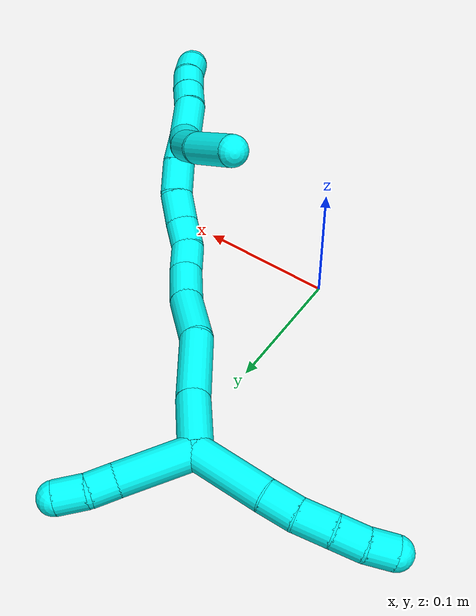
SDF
<sdf version="1.7">
 <world name="default">
  <model name="3">
   <static>0</static>
   <link name="3">
    <collision name="collision-cylinder-e_1_2_8">
     <pose>-0.020653 -0.009115 0.017016 0.491757 -0.819167 -0.217042</pose>
     <geometry><cylinder><radius>0.0125</radius><length>0.056539</length></cylinder></geometry>
     <surface>
      <friction><ode><mu>1.16</mu><mu2>1.16</mu2><slip1>0</slip1><slip2>0</slip2></ode></friction>
      <contact><ode><kp>1e+06</kp><kd>1</kd><max_vel>0</max_vel><min_depth>0.001</min_depth></ode></contact>
     </surface>
    </collision>
    <visual name="visual-cylinder-e_1_2_8">
     <pose>-0.020653 -0.009115 0.017016 0.491757 -0.819167 -0.217042</pose>
     <geometry><cylinder><radius>0.0125</radius><length>0.056539</length></cylinder></geometry>
     <material><ambient>0.003922 1 0.996078 1</ambient></material>
    </visual>
    <collision name="collision-cylinder-e_2_8_9">
     <pose>-0.050983 -0.022353 0.040099 0.597045 -0.922114 -0.303379</pose>
     <geometry><cylinder><radius>0.0125</radius><length>0.024286</length></cylinder></geometry>
     <surface>
      <friction><ode><mu>1.16</mu><mu2>1.16</mu2><slip1>0</slip1><slip2>0</slip2></ode></friction>
      <contact><ode><kp>1e+06</kp><kd>1</kd><max_vel>0</max_vel><min_depth>0.001</min_depth></ode></contact>
     </surface>
    </collision>
    <visual name="visual-cylinder-e_2_8_9">
     <pose>-0.050983 -0.022353 0.040099 0.597045 -0.922114 -0.303379</pose>
     <geometry><cylinder><radius>0.0125</radius><length>0.024286</length></cylinder></geometry>
     <material><ambient>0.003922 1 0.996078 1</ambient></material>
    </visual>
    <collision name="collision-cylinder-e_3_9_10">
     <pose>-0.070991 -0.032193 0.051406 0.828712 -0.92695 -0.432748</pose>
     <geometry><cylinder><radius>0.0125</radius><length>0.025835</length></cylinder></geometry>
     <surface>
      <friction><ode><mu>1.16</mu><mu2>1.16</mu2><slip1>0</slip1><slip2>0</slip2></ode></friction>
      <contact><ode><kp>1e+06</kp><kd>1</kd><max_vel>0</max_vel><min_depth>0.001</min_depth></ode></contact>
     </surface>
    </collision>
    <visual name="visual-cylinder-e_3_9_10">
     <pose>-0.070991 -0.032193 0.051406 0.828712 -0.92695 -0.432748</pose>
     <geometry><cylinder><radius>0.0125</radius><length>0.025835</length></cylinder></geometry>
     <material><ambient>0.003922 1 0.996078 1</ambient></material>
    </visual>
    <collision name="collision-cylinder-e_4_10_11">
     <pose>-0.090954 -0.042631 0.05992 0.96467 -1.03286 -0.577969</pose>
     <geometry><cylinder><radius>0.0125</radius><length>0.022433</length></cylinder></geometry>
     <surface>
      <friction><ode><mu>1.16</mu><mu2>1.16</mu2><slip1>0</slip1><slip2>0</slip2></ode></friction>
      <contact><ode><kp>1e+06</kp><kd>1</kd><max_vel>0</max_vel><min_depth>0.001</min_depth></ode></contact>
     </surface>
    </collision>
    <visual name="visual-cylinder-e_4_10_11">
     <pose>-0.090954 -0.042631 0.05992 0.96467 -1.03286 -0.577969</pose>
     <geometry><cylinder><radius>0.0125</radius><length>0.022433</length></cylinder></geometry>
     <material><ambient>0.003922 1 0.996078 1</ambient></material>
    </visual>
    <collision name="collision-cylinder-e_5_11_6">
     <pose>-0.109295 -0.052905 0.064815 1.28672 -0.984638 -0.76473</pose>
     <geometry><cylinder><radius>0.0125</radius><length>0.020907</length></cylinder></geometry>
     <surface>
      <friction><ode><mu>1.16</mu><mu2>1.16</mu2><slip1>0</slip1><slip2>0</slip2></ode></friction>
      <contact><ode><kp>1e+06</kp><kd>1</kd><max_vel>0</max_vel><min_depth>0.001</min_depth></ode></contact>
     </surface>
    </collision>
    <visual name="visual-cylinder-e_5_11_6">
     <pose>-0.109295 -0.052905 0.064815 1.28672 -0.984638 -0.76473</pose>
     <geometry><cylinder><radius>0.0125</radius><length>0.020907</length></cylinder></geometry>
     <material><ambient>0.003922 1 0.996078 1</ambient></material>
    </visual>
    <collision name="collision-cylinder-e_1_2_12">
     <pose>0.009941 0.026236 -0.002429 -1.66312 0.360783 -0.394868</pose>
     <geometry><cylinder><radius>0.0125</radius><length>0.056323</length></cylinder></geometry>
     <surface>
      <friction><ode><mu>1.16</mu><mu2>1.16</mu2><slip1>0</slip1><slip2>0</slip2></ode></friction>
      <contact><ode><kp>1e+06</kp><kd>1</kd><max_vel>0</max_vel><min_depth>0.001</min_depth></ode></contact>
     </surface>
    </collision>
    <visual name="visual-cylinder-e_1_2_12">
     <pose>0.009941 0.026236 -0.002429 -1.66312 0.360783 -0.394868</pose>
     <geometry><cylinder><radius>0.0125</radius><length>0.056323</length></cylinder></geometry>
     <material><ambient>0.003922 1 0.996078 1</ambient></material>
    </visual>
    <collision name="collision-cylinder-e_2_12_13">
     <pose>0.02425 0.061718 -0.003754 -1.45188 0.438583 -0.390618</pose>
     <geometry><cylinder><radius>0.0125</radius><length>0.02057</length></cylinder></geometry>
     <surface>
      <friction><ode><mu>1.16</mu><mu2>1.16</mu2><slip1>0</slip1><slip2>0</slip2></ode></friction>
      <contact><ode><kp>1e+06</kp><kd>1</kd><max_vel>0</max_vel><min_depth>0.001</min_depth></ode></contact>
     </surface>
    </collision>
    <visual name="visual-cylinder-e_2_12_13">
     <pose>0.02425 0.061718 -0.003754 -1.45188 0.438583 -0.390618</pose>
     <geometry><cylinder><radius>0.0125</radius><length>0.02057</length></cylinder></geometry>
     <material><ambient>0.003922 1 0.996078 1</ambient></material>
    </visual>
    <collision name="collision-cylinder-e_3_13_5">
     <pose>0.033918 0.081053 -0.004547 -1.7568 0.476629 -0.56988</pose>
     <geometry><cylinder><radius>0.0125</radius><length>0.023107</length></cylinder></geometry>
     <surface>
      <friction><ode><mu>1.16</mu><mu2>1.16</mu2><slip1>0</slip1><slip2>0</slip2></ode></friction>
      <contact><ode><kp>1e+06</kp><kd>1</kd><max_vel>0</max_vel><min_depth>0.001</min_depth></ode></contact>
     </surface>
    </collision>
    <visual name="visual-cylinder-e_3_13_5">
     <pose>0.033918 0.081053 -0.004547 -1.7568 0.476629 -0.56988</pose>
     <geometry><cylinder><radius>0.0125</radius><length>0.023107</length></cylinder></geometry>
     <material><ambient>0.003922 1 0.996078 1</ambient></material>
    </visual>
    <collision name="collision-cylinder-e_1_2_14">
     <pose>0.006017 -0.00842 -0.021072 2.76144 0.259189 1.19074</pose>
     <geometry><cylinder><radius>0.0125</radius><length>0.046953</length></cylinder></geometry>
     <surface>
      <friction><ode><mu>1.16</mu><mu2>1.16</mu2><slip1>0</slip1><slip2>0</slip2></ode></friction>
      <contact><ode><kp>1e+06</kp><kd>1</kd><max_vel>0</max_vel><min_depth>0.001</min_depth></ode></contact>
     </surface>
    </collision>
    <visual name="visual-cylinder-e_1_2_14">
     <pose>0.006017 -0.00842 -0.021072 2.76144 0.259189 1.19074</pose>
     <geometry><cylinder><radius>0.0125</radius><length>0.046953</length></cylinder></geometry>
     <material><ambient>0.003922 1 0.996078 1</ambient></material>
    </visual>
    <collision name="collision-cylinder-e_2_14_15">
     <pose>0.018707 -0.029377 -0.067361 2.68022 0.232672 0.923404</pose>
     <geometry><cylinder><radius>0.0125</radius><length>0.057881</length></cylinder></geometry>
     <surface>
      <friction><ode><mu>1.16</mu><mu2>1.16</mu2><slip1>0</slip1><slip2>0</slip2></ode></friction>
      <contact><ode><kp>1e+06</kp><kd>1</kd><max_vel>0</max_vel><min_depth>0.001</min_depth></ode></contact>
     </surface>
    </collision>
    <visual name="visual-cylinder-e_2_14_15">
     <pose>0.018707 -0.029377 -0.067361 2.68022 0.232672 0.923404</pose>
     <geometry><cylinder><radius>0.0125</radius><length>0.057881</length></cylinder></geometry>
     <material><ambient>0.003922 1 0.996078 1</ambient></material>
    </visual>
    <collision name="collision-cylinder-e_3_15_16">
     <pose>0.031386 -0.046415 -0.113871 2.9333 0.269253 1.82712</pose>
     <geometry><cylinder><radius>0.0125</radius><length>0.045156</length></cylinder></geometry>
     <surface>
      <friction><ode><mu>1.16</mu><mu2>1.16</mu2><slip1>0</slip1><slip2>0</slip2></ode></friction>
      <contact><ode><kp>1e+06</kp><kd>1</kd><max_vel>0</max_vel><min_depth>0.001</min_depth></ode></contact>
     </surface>
    </collision>
    <visual name="visual-cylinder-e_3_15_16">
     <pose>0.031386 -0.046415 -0.113871 2.9333 0.269253 1.82712</pose>
     <geometry><cylinder><radius>0.0125</radius><length>0.045156</length></cylinder></geometry>
     <material><ambient>0.003922 1 0.996078 1</ambient></material>
    </visual>
    <collision name="collision-cylinder-e_4_16_17">
     <pose>0.041685 -0.0571 -0.149236 2.72745 0.272369 1.15596</pose>
     <geometry><cylinder><radius>0.0125</radius><length>0.031917</length></cylinder></geometry>
     <surface>
      <friction><ode><mu>1.16</mu><mu2>1.16</mu2><slip1>0</slip1><slip2>0</slip2></ode></friction>
      <contact><ode><kp>1e+06</kp><kd>1</kd><max_vel>0</max_vel><min_depth>0.001</min_depth></ode></contact>
     </surface>
    </collision>
    <visual name="visual-cylinder-e_4_16_17">
     <pose>0.041685 -0.0571 -0.149236 2.72745 0.272369 1.15596</pose>
     <geometry><cylinder><radius>0.0125</radius><length>0.031917</length></cylinder></geometry>
     <material><ambient>0.003922 1 0.996078 1</ambient></material>
    </visual>
    <collision name="collision-cylinder-e_5_17_18">
     <pose>0.050231 -0.06967 -0.171909 2.50304 0.377869 1.04879</pose>
     <geometry><cylinder><radius>0.0125</radius><length>0.023053</length></cylinder></geometry>
     <surface>
      <friction><ode><mu>1.16</mu><mu2>1.16</mu2><slip1>0</slip1><slip2>0</slip2></ode></friction>
      <contact><ode><kp>1e+06</kp><kd>1</kd><max_vel>0</max_vel><min_depth>0.001</min_depth></ode></contact>
     </surface>
    </collision>
    <visual name="visual-cylinder-e_5_17_18">
     <pose>0.050231 -0.06967 -0.171909 2.50304 0.377869 1.04879</pose>
     <geometry><cylinder><radius>0.0125</radius><length>0.023053</length></cylinder></geometry>
     <material><ambient>0.003922 1 0.996078 1</ambient></material>
    </visual>
    <collision name="collision-cylinder-e_6_18_19">
     <pose>0.060927 -0.080162 -0.188423 2.66289 0.625934 1.84934</pose>
     <geometry><cylinder><radius>0.0125</radius><length>0.021996</length></cylinder></geometry>
     <surface>
      <friction><ode><mu>1.16</mu><mu2>1.16</mu2><slip1>0</slip1><slip2>0</slip2></ode></friction>
      <contact><ode><kp>1e+06</kp><kd>1</kd><max_vel>0</max_vel><min_depth>0.001</min_depth></ode></contact>
     </surface>
    </collision>
    <visual name="visual-cylinder-e_6_18_19">
     <pose>0.060927 -0.080162 -0.188423 2.66289 0.625934 1.84934</pose>
     <geometry><cylinder><radius>0.0125</radius><length>0.021996</length></cylinder></geometry>
     <material><ambient>0.003922 1 0.996078 1</ambient></material>
    </visual>
    <collision name="collision-cylinder-e_7_19_20">
     <pose>0.075689 -0.089999 -0.203471 2.46494 0.737702 1.66468</pose>
     <geometry><cylinder><radius>0.0125</radius><length>0.024738</length></cylinder></geometry>
     <surface>
      <friction><ode><mu>1.16</mu><mu2>1.16</mu2><slip1>0</slip1><slip2>0</slip2></ode></friction>
      <contact><ode><kp>1e+06</kp><kd>1</kd><max_vel>0</max_vel><min_depth>0.001</min_depth></ode></contact>
     </surface>
    </collision>
    <visual name="visual-cylinder-e_7_19_20">
     <pose>0.075689 -0.089999 -0.203471 2.46494 0.737702 1.66468</pose>
     <geometry><cylinder><radius>0.0125</radius><length>0.024738</length></cylinder></geometry>
     <material><ambient>0.003922 1 0.996078 1</ambient></material>
    </visual>
    <collision name="collision-cylinder-e_8_20_21">
     <pose>0.090958 -0.104443 -0.217971 2.27247 0.547152 1.08754</pose>
     <geometry><cylinder><radius>0.0125</radius><length>0.026715</length></cylinder></geometry>
     <surface>
      <friction><ode><mu>1.16</mu><mu2>1.16</mu2><slip1>0</slip1><slip2>0</slip2></ode></friction>
      <contact><ode><kp>1e+06</kp><kd>1</kd><max_vel>0</max_vel><min_depth>0.001</min_depth></ode></contact>
     </surface>
    </collision>
    <visual name="visual-cylinder-e_8_20_21">
     <pose>0.090958 -0.104443 -0.217971 2.27247 0.547152 1.08754</pose>
     <geometry><cylinder><radius>0.0125</radius><length>0.026715</length></cylinder></geometry>
     <material><ambient>0.003922 1 0.996078 1</ambient></material>
    </visual>
    <collision name="collision-cylinder-e_9_21_1">
     <pose>0.102641 -0.121491 -0.2303 2.10806 0.453929 0.772013</pose>
     <geometry><cylinder><radius>0.0125</radius><length>0.02159</length></cylinder></geometry>
     <surface>
      <friction><ode><mu>1.16</mu><mu2>1.16</mu2><slip1>0</slip1><slip2>0</slip2></ode></friction>
      <contact><ode><kp>1e+06</kp><kd>1</kd><max_vel>0</max_vel><min_depth>0.001</min_depth></ode></contact>
     </surface>
    </collision>
    <visual name="visual-cylinder-e_9_21_1">
     <pose>0.102641 -0.121491 -0.2303 2.10806 0.453929 0.772013</pose>
     <geometry><cylinder><radius>0.0125</radius><length>0.02159</length></cylinder></geometry>
     <material><ambient>0.003922 1 0.996078 1</ambient></material>
    </visual>
    <collision name="collision-cylinder-e_1_1_22">
     <pose>0.111873 -0.139292 -0.250537 2.58673 0.245341 0.817152</pose>
     <geometry><cylinder><radius>0.0125</radius><length>0.037044</length></cylinder></geometry>
     <surface>
      <friction><ode><mu>1.16</mu><mu2>1.16</mu2><slip1>0</slip1><slip2>0</slip2></ode></friction>
      <contact><ode><kp>1e+06</kp><kd>1</kd><max_vel>0</max_vel><min_depth>0.001</min_depth></ode></contact>
     </surface>
    </collision>
    <visual name="visual-cylinder-e_1_1_22">
     <pose>0.111873 -0.139292 -0.250537 2.58673 0.245341 0.817152</pose>
     <geometry><cylinder><radius>0.0125</radius><length>0.037044</length></cylinder></geometry>
     <material><ambient>0.003922 1 0.996078 1</ambient></material>
    </visual>
    <collision name="collision-cylinder-e_2_22_23">
     <pose>0.119531 -0.152672 -0.275279 2.74959 0.298998 1.29798</pose>
     <geometry><cylinder><radius>0.0125</radius><length>0.021447</length></cylinder></geometry>
     <surface>
      <friction><ode><mu>1.16</mu><mu2>1.16</mu2><slip1>0</slip1><slip2>0</slip2></ode></friction>
      <contact><ode><kp>1e+06</kp><kd>1</kd><max_vel>0</max_vel><min_depth>0.001</min_depth></ode></contact>
     </surface>
    </collision>
    <visual name="visual-cylinder-e_2_22_23">
     <pose>0.119531 -0.152672 -0.275279 2.74959 0.298998 1.29798</pose>
     <geometry><cylinder><radius>0.0125</radius><length>0.021447</length></cylinder></geometry>
     <material><ambient>0.003922 1 0.996078 1</ambient></material>
    </visual>
    <collision name="collision-cylinder-e_3_23_24">
     <pose>0.12536 -0.160722 -0.293817 2.71381 0.2618 1.08977</pose>
     <geometry><cylinder><radius>0.0125</radius><length>0.020634</length></cylinder></geometry>
     <surface>
      <friction><ode><mu>1.16</mu><mu2>1.16</mu2><slip1>0</slip1><slip2>0</slip2></ode></friction>
      <contact><ode><kp>1e+06</kp><kd>1</kd><max_vel>0</max_vel><min_depth>0.001</min_depth></ode></contact>
     </surface>
    </collision>
    <visual name="visual-cylinder-e_3_23_24">
     <pose>0.12536 -0.160722 -0.293817 2.71381 0.2618 1.08977</pose>
     <geometry><cylinder><radius>0.0125</radius><length>0.020634</length></cylinder></geometry>
     <material><ambient>0.003922 1 0.996078 1</ambient></material>
    </visual>
    <collision name="collision-cylinder-e_4_24_4">
     <pose>0.128758 -0.169437 -0.312235 2.686 0.069785 0.298912</pose>
     <geometry><cylinder><radius>0.0125</radius><length>0.020874</length></cylinder></geometry>
     <surface>
      <friction><ode><mu>1.16</mu><mu2>1.16</mu2><slip1>0</slip1><slip2>0</slip2></ode></friction>
      <contact><ode><kp>1e+06</kp><kd>1</kd><max_vel>0</max_vel><min_depth>0.001</min_depth></ode></contact>
     </surface>
    </collision>
    <visual name="visual-cylinder-e_4_24_4">
     <pose>0.128758 -0.169437 -0.312235 2.686 0.069785 0.298912</pose>
     <geometry><cylinder><radius>0.0125</radius><length>0.020874</length></cylinder></geometry>
     <material><ambient>0.003922 1 0.996078 1</ambient></material>
    </visual>
    <collision name="collision-cylinder-e_1_1_25">
     <pose>0.107509 -0.128393 -0.22473 -0.135157 0.012612 -0.000854</pose>
     <geometry><cylinder><radius>0.0125</radius><length>0.021265</length></cylinder></geometry>
     <surface>
      <friction><ode><mu>1.16</mu><mu2>1.16</mu2><slip1>0</slip1><slip2>0</slip2></ode></friction>
      <contact><ode><kp>1e+06</kp><kd>1</kd><max_vel>0</max_vel><min_depth>0.001</min_depth></ode></contact>
     </surface>
    </collision>
    <visual name="visual-cylinder-e_1_1_25">
     <pose>0.107509 -0.128393 -0.22473 -0.135157 0.012612 -0.000854</pose>
     <geometry><cylinder><radius>0.0125</radius><length>0.021265</length></cylinder></geometry>
     <material><ambient>0.003922 1 0.996078 1</ambient></material>
    </visual>
    <collision name="collision-cylinder-e_2_25_26">
     <pose>0.107696 -0.129889 -0.199052 0.191024 0.003444 0.00033</pose>
     <geometry><cylinder><radius>0.0125</radius><length>0.030848</length></cylinder></geometry>
     <surface>
      <friction><ode><mu>1.16</mu><mu2>1.16</mu2><slip1>0</slip1><slip2>0</slip2></ode></friction>
      <contact><ode><kp>1e+06</kp><kd>1</kd><max_vel>0</max_vel><min_depth>0.001</min_depth></ode></contact>
     </surface>
    </collision>
    <visual name="visual-cylinder-e_2_25_26">
     <pose>0.107696 -0.129889 -0.199052 0.191024 0.003444 0.00033</pose>
     <geometry><cylinder><radius>0.0125</radius><length>0.030848</length></cylinder></geometry>
     <material><ambient>0.003922 1 0.996078 1</ambient></material>
    </visual>
    <collision name="collision-cylinder-e_3_26_3">
     <pose>0.103884 -0.141976 -0.162127 0.398002 -0.162148 -0.032769</pose>
     <geometry><cylinder><radius>0.0125</radius><length>0.047888</length></cylinder></geometry>
     <surface>
      <friction><ode><mu>1.16</mu><mu2>1.16</mu2><slip1>0</slip1><slip2>0</slip2></ode></friction>
      <contact><ode><kp>1e+06</kp><kd>1</kd><max_vel>0</max_vel><min_depth>0.001</min_depth></ode></contact>
     </surface>
    </collision>
    <visual name="visual-cylinder-e_3_26_3">
     <pose>0.103884 -0.141976 -0.162127 0.398002 -0.162148 -0.032769</pose>
     <geometry><cylinder><radius>0.0125</radius><length>0.047888</length></cylinder></geometry>
     <material><ambient>0.003922 1 0.996078 1</ambient></material>
    </visual>
    <collision name="collision-sphere-3">
     <pose>0.100018 -0.151134 -0.140344 0 -0 0</pose>
     <geometry><sphere><radius>0.0125</radius></sphere></geometry>
     <surface>
      <friction><ode><mu>1.16</mu><mu2>1.16</mu2><slip1>0</slip1><slip2>0</slip2></ode></friction>
      <contact><ode><kp>1e+06</kp><kd>1</kd><max_vel>0</max_vel><min_depth>0.001</min_depth></ode></contact>
     </surface>
    </collision>
    <visual name="visual-sphere-3">
     <pose>0.100018 -0.151134 -0.140344 0 -0 0</pose>
     <geometry><sphere><radius>0.0125</radius></sphere></geometry>
     <material><ambient>0.003922 1 0.996078 1</ambient></material>
    </visual>
    <collision name="collision-sphere-26">
     <pose>0.107749 -0.132818 -0.183909 0 -0 0</pose>
     <geometry><sphere><radius>0.0125</radius></sphere></geometry>
     <surface>
      <friction><ode><mu>1.16</mu><mu2>1.16</mu2><slip1>0</slip1><slip2>0</slip2></ode></friction>
      <contact><ode><kp>1e+06</kp><kd>1</kd><max_vel>0</max_vel><min_depth>0.001</min_depth></ode></contact>
     </surface>
    </collision>
    <visual name="visual-sphere-26">
     <pose>0.107749 -0.132818 -0.183909 0 -0 0</pose>
     <geometry><sphere><radius>0.0125</radius></sphere></geometry>
     <material><ambient>0.003922 1 0.996078 1</ambient></material>
    </visual>
    <collision name="collision-sphere-25">
     <pose>0.107643 -0.126961 -0.214196 0 -0 0</pose>
     <geometry><sphere><radius>0.0125</radius></sphere></geometry>
     <surface>
      <friction><ode><mu>1.16</mu><mu2>1.16</mu2><slip1>0</slip1><slip2>0</slip2></ode></friction>
      <contact><ode><kp>1e+06</kp><kd>1</kd><max_vel>0</max_vel><min_depth>0.001</min_depth></ode></contact>
     </surface>
    </collision>
    <visual name="visual-sphere-25">
     <pose>0.107643 -0.126961 -0.214196 0 -0 0</pose>
     <geometry><sphere><radius>0.0125</radius></sphere></geometry>
     <material><ambient>0.003922 1 0.996078 1</ambient></material>
    </visual>
    <collision name="collision-sphere-4">
     <pose>0.129486 -0.174018 -0.321584 0 -0 0</pose>
     <geometry><sphere><radius>0.0125</radius></sphere></geometry>
     <surface>
      <friction><ode><mu>1.16</mu><mu2>1.16</mu2><slip1>0</slip1><slip2>0</slip2></ode></friction>
      <contact><ode><kp>1e+06</kp><kd>1</kd><max_vel>0</max_vel><min_depth>0.001</min_depth></ode></contact>
     </surface>
    </collision>
    <visual name="visual-sphere-4">
     <pose>0.129486 -0.174018 -0.321584 0 -0 0</pose>
     <geometry><sphere><radius>0.0125</radius></sphere></geometry>
     <material><ambient>0.003922 1 0.996078 1</ambient></material>
    </visual>
    <collision name="collision-sphere-24">
     <pose>0.12803 -0.164856 -0.302885 0 -0 0</pose>
     <geometry><sphere><radius>0.0125</radius></sphere></geometry>
     <surface>
      <friction><ode><mu>1.16</mu><mu2>1.16</mu2><slip1>0</slip1><slip2>0</slip2></ode></friction>
      <contact><ode><kp>1e+06</kp><kd>1</kd><max_vel>0</max_vel><min_depth>0.001</min_depth></ode></contact>
     </surface>
    </collision>
    <visual name="visual-sphere-24">
     <pose>0.12803 -0.164856 -0.302885 0 -0 0</pose>
     <geometry><sphere><radius>0.0125</radius></sphere></geometry>
     <material><ambient>0.003922 1 0.996078 1</ambient></material>
    </visual>
    <collision name="collision-sphere-23">
     <pose>0.12269 -0.156588 -0.28475 0 -0 0</pose>
     <geometry><sphere><radius>0.0125</radius></sphere></geometry>
     <surface>
      <friction><ode><mu>1.16</mu><mu2>1.16</mu2><slip1>0</slip1><slip2>0</slip2></ode></friction>
      <contact><ode><kp>1e+06</kp><kd>1</kd><max_vel>0</max_vel><min_depth>0.001</min_depth></ode></contact>
     </surface>
    </collision>
    <visual name="visual-sphere-23">
     <pose>0.12269 -0.156588 -0.28475 0 -0 0</pose>
     <geometry><sphere><radius>0.0125</radius></sphere></geometry>
     <material><ambient>0.003922 1 0.996078 1</ambient></material>
    </visual>
    <collision name="collision-sphere-22">
     <pose>0.116372 -0.148757 -0.265809 0 -0 0</pose>
     <geometry><sphere><radius>0.0125</radius></sphere></geometry>
     <surface>
      <friction><ode><mu>1.16</mu><mu2>1.16</mu2><slip1>0</slip1><slip2>0</slip2></ode></friction>
      <contact><ode><kp>1e+06</kp><kd>1</kd><max_vel>0</max_vel><min_depth>0.001</min_depth></ode></contact>
     </surface>
    </collision>
    <visual name="visual-sphere-22">
     <pose>0.116372 -0.148757 -0.265809 0 -0 0</pose>
     <geometry><sphere><radius>0.0125</radius></sphere></geometry>
     <material><ambient>0.003922 1 0.996078 1</ambient></material>
    </visual>
    <collision name="collision-sphere-1">
     <pose>0.107375 -0.129826 -0.235265 0 -0 0</pose>
     <geometry><sphere><radius>0.0125</radius></sphere></geometry>
     <surface>
      <friction><ode><mu>1.16</mu><mu2>1.16</mu2><slip1>0</slip1><slip2>0</slip2></ode></friction>
      <contact><ode><kp>1e+06</kp><kd>1</kd><max_vel>0</max_vel><min_depth>0.001</min_depth></ode></contact>
     </surface>
    </collision>
    <visual name="visual-sphere-1">
     <pose>0.107375 -0.129826 -0.235265 0 -0 0</pose>
     <geometry><sphere><radius>0.0125</radius></sphere></geometry>
     <material><ambient>0.003922 1 0.996078 1</ambient></material>
    </visual>
    <collision name="collision-sphere-21">
     <pose>0.097907 -0.113156 -0.225334 0 -0 0</pose>
     <geometry><sphere><radius>0.0125</radius></sphere></geometry>
     <surface>
      <friction><ode><mu>1.16</mu><mu2>1.16</mu2><slip1>0</slip1><slip2>0</slip2></ode></friction>
      <contact><ode><kp>1e+06</kp><kd>1</kd><max_vel>0</max_vel><min_depth>0.001</min_depth></ode></contact>
     </surface>
    </collision>
    <visual name="visual-sphere-21">
     <pose>0.097907 -0.113156 -0.225334 0 -0 0</pose>
     <geometry><sphere><radius>0.0125</radius></sphere></geometry>
     <material><ambient>0.003922 1 0.996078 1</ambient></material>
    </visual>
    <collision name="collision-sphere-6">
     <pose>-0.118004 -0.058456 0.066436 0 -0 0</pose>
     <geometry><sphere><radius>0.0125</radius></sphere></geometry>
     <surface>
      <friction><ode><mu>1.16</mu><mu2>1.16</mu2><slip1>0</slip1><slip2>0</slip2></ode></friction>
      <contact><ode><kp>1e+06</kp><kd>1</kd><max_vel>0</max_vel><min_depth>0.001</min_depth></ode></contact>
     </surface>
    </collision>
    <visual name="visual-sphere-6">
     <pose>-0.118004 -0.058456 0.066436 0 -0 0</pose>
     <geometry><sphere><radius>0.0125</radius></sphere></geometry>
     <material><ambient>0.003922 1 0.996078 1</ambient></material>
    </visual>
    <collision name="collision-sphere-11">
     <pose>-0.100587 -0.047354 0.063194 0 -0 0</pose>
     <geometry><sphere><radius>0.0125</radius></sphere></geometry>
     <surface>
      <friction><ode><mu>1.16</mu><mu2>1.16</mu2><slip1>0</slip1><slip2>0</slip2></ode></friction>
      <contact><ode><kp>1e+06</kp><kd>1</kd><max_vel>0</max_vel><min_depth>0.001</min_depth></ode></contact>
     </surface>
    </collision>
    <visual name="visual-sphere-11">
     <pose>-0.100587 -0.047354 0.063194 0 -0 0</pose>
     <geometry><sphere><radius>0.0125</radius></sphere></geometry>
     <material><ambient>0.003922 1 0.996078 1</ambient></material>
    </visual>
    <collision name="collision-sphere-10">
     <pose>-0.081322 -0.037908 0.056646 0 -0 0</pose>
     <geometry><sphere><radius>0.0125</radius></sphere></geometry>
     <surface>
      <friction><ode><mu>1.16</mu><mu2>1.16</mu2><slip1>0</slip1><slip2>0</slip2></ode></friction>
      <contact><ode><kp>1e+06</kp><kd>1</kd><max_vel>0</max_vel><min_depth>0.001</min_depth></ode></contact>
     </surface>
    </collision>
    <visual name="visual-sphere-10">
     <pose>-0.081322 -0.037908 0.056646 0 -0 0</pose>
     <geometry><sphere><radius>0.0125</radius></sphere></geometry>
     <material><ambient>0.003922 1 0.996078 1</ambient></material>
    </visual>
    <collision name="collision-sphere-9">
     <pose>-0.060659 -0.026478 0.046166 0 -0 0</pose>
     <geometry><sphere><radius>0.0125</radius></sphere></geometry>
     <surface>
      <friction><ode><mu>1.16</mu><mu2>1.16</mu2><slip1>0</slip1><slip2>0</slip2></ode></friction>
      <contact><ode><kp>1e+06</kp><kd>1</kd><max_vel>0</max_vel><min_depth>0.001</min_depth></ode></contact>
     </surface>
    </collision>
    <visual name="visual-sphere-9">
     <pose>-0.060659 -0.026478 0.046166 0 -0 0</pose>
     <geometry><sphere><radius>0.0125</radius></sphere></geometry>
     <material><ambient>0.003922 1 0.996078 1</ambient></material>
    </visual>
    <collision name="collision-sphere-2">
     <geometry><sphere><radius>0.0125</radius></sphere></geometry>
     <surface>
      <friction><ode><mu>1.16</mu><mu2>1.16</mu2><slip1>0</slip1><slip2>0</slip2></ode></friction>
      <contact><ode><kp>1e+06</kp><kd>1</kd><max_vel>0</max_vel><min_depth>0.001</min_depth></ode></contact>
     </surface>
    </collision>
    <visual name="visual-sphere-2">
     <geometry><sphere><radius>0.0125</radius></sphere></geometry>
     <material><ambient>0.003922 1 0.996078 1</ambient></material>
    </visual>
    <collision name="collision-sphere-19">
     <pose>0.06737 -0.084267 -0.196334 0 -0 0</pose>
     <geometry><sphere><radius>0.0125</radius></sphere></geometry>
     <surface>
      <friction><ode><mu>1.16</mu><mu2>1.16</mu2><slip1>0</slip1><slip2>0</slip2></ode></friction>
      <contact><ode><kp>1e+06</kp><kd>1</kd><max_vel>0</max_vel><min_depth>0.001</min_depth></ode></contact>
     </surface>
    </collision>
    <visual name="visual-sphere-19">
     <pose>0.06737 -0.084267 -0.196334 0 -0 0</pose>
     <geometry><sphere><radius>0.0125</radius></sphere></geometry>
     <material><ambient>0.003922 1 0.996078 1</ambient></material>
    </visual>
    <collision name="collision-sphere-8">
     <pose>-0.041306 -0.018229 0.034032 0 -0 0</pose>
     <geometry><sphere><radius>0.0125</radius></sphere></geometry>
     <surface>
      <friction><ode><mu>1.16</mu><mu2>1.16</mu2><slip1>0</slip1><slip2>0</slip2></ode></friction>
      <contact><ode><kp>1e+06</kp><kd>1</kd><max_vel>0</max_vel><min_depth>0.001</min_depth></ode></contact>
     </surface>
    </collision>
    <visual name="visual-sphere-8">
     <pose>-0.041306 -0.018229 0.034032 0 -0 0</pose>
     <geometry><sphere><radius>0.0125</radius></sphere></geometry>
     <material><ambient>0.003922 1 0.996078 1</ambient></material>
    </visual>
    <collision name="collision-sphere-12">
     <pose>0.019883 0.052473 -0.004858 0 -0 0</pose>
     <geometry><sphere><radius>0.0125</radius></sphere></geometry>
     <surface>
      <friction><ode><mu>1.16</mu><mu2>1.16</mu2><slip1>0</slip1><slip2>0</slip2></ode></friction>
      <contact><ode><kp>1e+06</kp><kd>1</kd><max_vel>0</max_vel><min_depth>0.001</min_depth></ode></contact>
     </surface>
    </collision>
    <visual name="visual-sphere-12">
     <pose>0.019883 0.052473 -0.004858 0 -0 0</pose>
     <geometry><sphere><radius>0.0125</radius></sphere></geometry>
     <material><ambient>0.003922 1 0.996078 1</ambient></material>
    </visual>
    <collision name="collision-sphere-13">
     <pose>0.028618 0.070964 -0.002649 0 -0 0</pose>
     <geometry><sphere><radius>0.0125</radius></sphere></geometry>
     <surface>
      <friction><ode><mu>1.16</mu><mu2>1.16</mu2><slip1>0</slip1><slip2>0</slip2></ode></friction>
      <contact><ode><kp>1e+06</kp><kd>1</kd><max_vel>0</max_vel><min_depth>0.001</min_depth></ode></contact>
     </surface>
    </collision>
    <visual name="visual-sphere-13">
     <pose>0.028618 0.070964 -0.002649 0 -0 0</pose>
     <geometry><sphere><radius>0.0125</radius></sphere></geometry>
     <material><ambient>0.003922 1 0.996078 1</ambient></material>
    </visual>
    <collision name="collision-sphere-5">
     <pose>0.039219 0.091142 -0.006446 0 -0 0</pose>
     <geometry><sphere><radius>0.0125</radius></sphere></geometry>
     <surface>
      <friction><ode><mu>1.16</mu><mu2>1.16</mu2><slip1>0</slip1><slip2>0</slip2></ode></friction>
      <contact><ode><kp>1e+06</kp><kd>1</kd><max_vel>0</max_vel><min_depth>0.001</min_depth></ode></contact>
     </surface>
    </collision>
    <visual name="visual-sphere-5">
     <pose>0.039219 0.091142 -0.006446 0 -0 0</pose>
     <geometry><sphere><radius>0.0125</radius></sphere></geometry>
     <material><ambient>0.003922 1 0.996078 1</ambient></material>
    </visual>
    <collision name="collision-sphere-14">
     <pose>0.012034 -0.016841 -0.042145 0 -0 0</pose>
     <geometry><sphere><radius>0.0125</radius></sphere></geometry>
     <surface>
      <friction><ode><mu>1.16</mu><mu2>1.16</mu2><slip1>0</slip1><slip2>0</slip2></ode></friction>
      <contact><ode><kp>1e+06</kp><kd>1</kd><max_vel>0</max_vel><min_depth>0.001</min_depth></ode></contact>
     </surface>
    </collision>
    <visual name="visual-sphere-14">
     <pose>0.012034 -0.016841 -0.042145 0 -0 0</pose>
     <geometry><sphere><radius>0.0125</radius></sphere></geometry>
     <material><ambient>0.003922 1 0.996078 1</ambient></material>
    </visual>
    <collision name="collision-sphere-15">
     <pose>0.02538 -0.041914 -0.092578 0 -0 0</pose>
     <geometry><sphere><radius>0.0125</radius></sphere></geometry>
     <surface>
      <friction><ode><mu>1.16</mu><mu2>1.16</mu2><slip1>0</slip1><slip2>0</slip2></ode></friction>
      <contact><ode><kp>1e+06</kp><kd>1</kd><max_vel>0</max_vel><min_depth>0.001</min_depth></ode></contact>
     </surface>
    </collision>
    <visual name="visual-sphere-15">
     <pose>0.02538 -0.041914 -0.092578 0 -0 0</pose>
     <geometry><sphere><radius>0.0125</radius></sphere></geometry>
     <material><ambient>0.003922 1 0.996078 1</ambient></material>
    </visual>
    <collision name="collision-sphere-16">
     <pose>0.037392 -0.050915 -0.135165 0 -0 0</pose>
     <geometry><sphere><radius>0.0125</radius></sphere></geometry>
     <surface>
      <friction><ode><mu>1.16</mu><mu2>1.16</mu2><slip1>0</slip1><slip2>0</slip2></ode></friction>
      <contact><ode><kp>1e+06</kp><kd>1</kd><max_vel>0</max_vel><min_depth>0.001</min_depth></ode></contact>
     </surface>
    </collision>
    <visual name="visual-sphere-16">
     <pose>0.037392 -0.050915 -0.135165 0 -0 0</pose>
     <geometry><sphere><radius>0.0125</radius></sphere></geometry>
     <material><ambient>0.003922 1 0.996078 1</ambient></material>
    </visual>
    <collision name="collision-sphere-17">
     <pose>0.045978 -0.063285 -0.163307 0 -0 0</pose>
     <geometry><sphere><radius>0.0125</radius></sphere></geometry>
     <surface>
      <friction><ode><mu>1.16</mu><mu2>1.16</mu2><slip1>0</slip1><slip2>0</slip2></ode></friction>
      <contact><ode><kp>1e+06</kp><kd>1</kd><max_vel>0</max_vel><min_depth>0.001</min_depth></ode></contact>
     </surface>
    </collision>
    <visual name="visual-sphere-17">
     <pose>0.045978 -0.063285 -0.163307 0 -0 0</pose>
     <geometry><sphere><radius>0.0125</radius></sphere></geometry>
     <material><ambient>0.003922 1 0.996078 1</ambient></material>
    </visual>
    <collision name="collision-sphere-18">
     <pose>0.054483 -0.076056 -0.180512 0 -0 0</pose>
     <geometry><sphere><radius>0.0125</radius></sphere></geometry>
     <surface>
      <friction><ode><mu>1.16</mu><mu2>1.16</mu2><slip1>0</slip1><slip2>0</slip2></ode></friction>
      <contact><ode><kp>1e+06</kp><kd>1</kd><max_vel>0</max_vel><min_depth>0.001</min_depth></ode></contact>
     </surface>
    </collision>
    <visual name="visual-sphere-18">
     <pose>0.054483 -0.076056 -0.180512 0 -0 0</pose>
     <geometry><sphere><radius>0.0125</radius></sphere></geometry>
     <material><ambient>0.003922 1 0.996078 1</ambient></material>
    </visual>
    <collision name="collision-sphere-20">
     <pose>0.084009 -0.095731 -0.210607 0 -0 0</pose>
     <geometry><sphere><radius>0.0125</radius></sphere></geometry>
     <surface>
      <friction><ode><mu>1.16</mu><mu2>1.16</mu2><slip1>0</slip1><slip2>0</slip2></ode></friction>
      <contact><ode><kp>1e+06</kp><kd>1</kd><max_vel>0</max_vel><min_depth>0.001</min_depth></ode></contact>
     </surface>
    </collision>
    <visual name="visual-sphere-20">
     <pose>0.084009 -0.095731 -0.210607 0 -0 0</pose>
     <geometry><sphere><radius>0.0125</radius></sphere></geometry>
     <material><ambient>0.003922 1 0.996078 1</ambient></material>
    </visual>
    <inertial>
     <pose>0.03863 -0.060238 -0.106045 0 -0 0</pose>
     <mass>0.75</mass>
     <inertia><ixx>0.000113</ixx><ixy>0</ixy><ixz>0</ixz><iyy>5.3e-05</iyy><iyz>0</iyz><izz>3e-06</izz></inertia>
    </inertial>
   </link>
   <pose>-0.023263 0.195127 0.032452 -0.76128 -0.787224 0.170182</pose>
  </model>
 </world>
</sdf>
